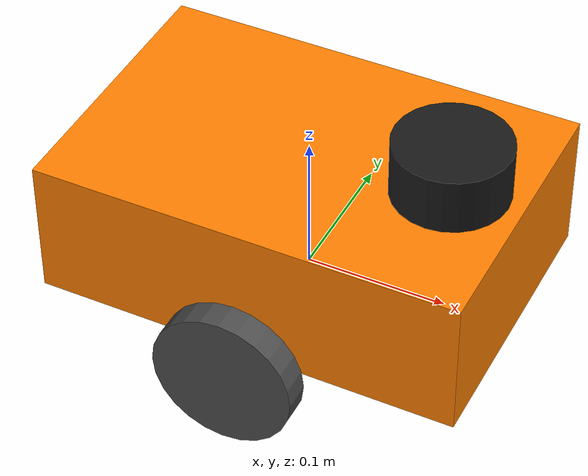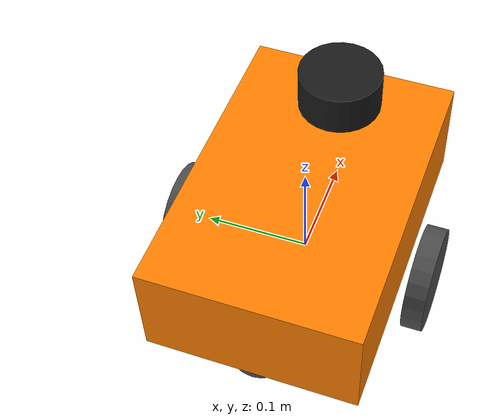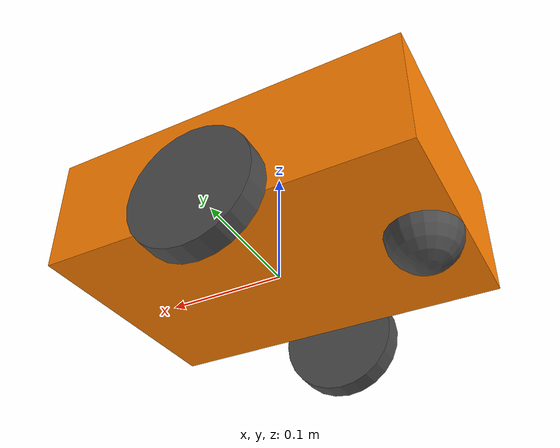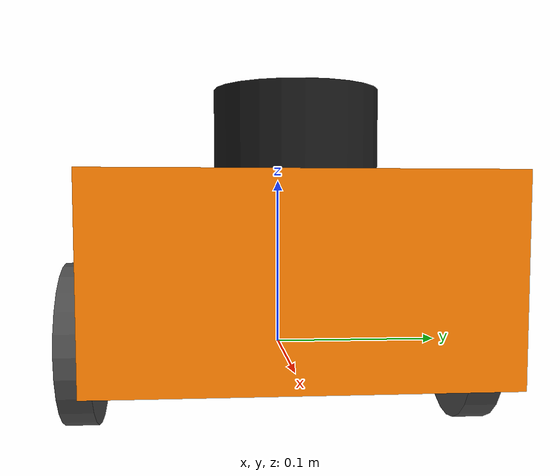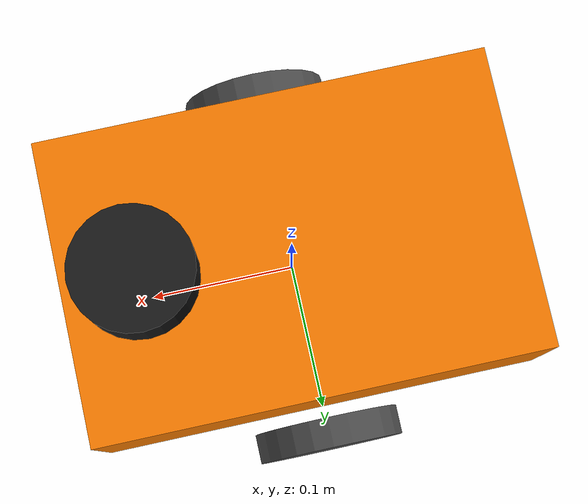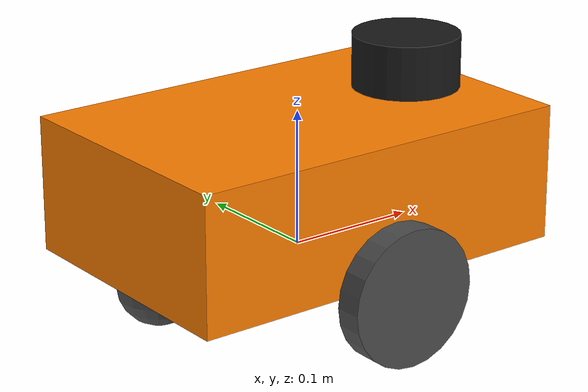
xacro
<?xml version="1.0"?>
<robot xmlns:xacro="http://www.ros.org/wiki/xacro" name="bot">

  <!-- ===== 매크로: 박스/실린더 inertial ===== -->
  <xacro:macro name="box_inertial" params="m x y z">
    <inertial>
      <mass value="${m}"/>
      <inertia
        ixx="${m*(y*y+z*z)/12}" iyy="${m*(x*x+z*z)/12}" izz="${m*(x*x+y*y)/12}"
        ixy="0" ixz="0" iyz="0"/>
    </inertial>
  </xacro:macro>

  <xacro:macro name="cyl_inertial" params="m r h">
    <inertial>
      <mass value="${m}"/>
      <inertia
        ixx="${m*(3*r*r+h*h)/12}" iyy="${m*(3*r*r+h*h)/12}" izz="${m*r*r/2}"
        ixy="0" ixz="0" iyz="0"/>
    </inertial>
  </xacro:macro>

  <!-- ===== 본체 ===== -->
  <link name="base_footprint"/>

  <link name="base_link">
    <visual>
      <geometry><box size="0.3 0.2 0.1"/></geometry>
      <material name="orange"><color rgba="1 0.5 0 1"/></material>
    </visual>
    <collision>
      <geometry><box size="0.3 0.2 0.1"/></geometry>
    </collision>
    <xacro:box_inertial m="2" x="0.3" y="0.2" z="0.1"/>
  </link>

  <joint name="base_footprint_joint" type="fixed">
    <parent link="base_footprint"/>
    <child link="base_link"/>
    <origin xyz="0 0 0.05" rpy="0 0 0"/>
  </joint>

  <!-- ===== 라이다 ===== -->
  <link name="lidar_link">
    <visual>
      <geometry><cylinder radius="0.04" length="0.04"/></geometry>
      <material name="black"><color rgba="0.1 0.1 0.1 1"/></material>
    </visual>
    <collision>
      <geometry><cylinder radius="0.04" length="0.04"/></geometry>
    </collision>
    <xacro:cyl_inertial m="0.1" r="0.04" h="0.04"/>
  </link>

  <joint name="lidar_joint" type="fixed">
    <parent link="base_link"/>
    <child link="lidar_link"/>
    <origin xyz="0.1 0 0.07" rpy="0 0 0"/>
  </joint>

  <!-- ===== 바퀴 매크로 ===== -->
  <xacro:macro name="wheel" params="prefix y_offset">
    <link name="wheel_${prefix}">
      <visual>
        <geometry><cylinder radius="0.05" length="0.02"/></geometry>
        <material name="gray"><color rgba="0.3 0.3 0.3 1"/></material>
      </visual>
      <collision>
        <geometry><cylinder radius="0.05" length="0.02"/></geometry>
      </collision>
      <xacro:cyl_inertial m="0.2" r="0.05" h="0.02"/>
    </link>

    <joint name="wheel_${prefix}_joint" type="continuous">
      <parent link="base_link"/>
      <child link="wheel_${prefix}"/>
      <origin xyz="0 ${y_offset} -0.05" rpy="-1.5708 0 0"/>
      <axis xyz="0 0 1"/>
    </joint>
  </xacro:macro>

  <xacro:wheel prefix="left"  y_offset="0.12"/>
  <xacro:wheel prefix="right" y_offset="-0.12"/>

  <!-- ===== 캐스터 (앞/뒤 균형) ===== -->
  <link name="caster">
    <visual>
      <geometry><sphere radius="0.03"/></geometry>
      <material name="gray"/>
    </visual>
    <collision>
      <geometry><sphere radius="0.03"/></geometry>
    </collision>
    <inertial>
      <mass value="0.05"/>
      <inertia ixx="1e-5" iyy="1e-5" izz="1e-5" ixy="0" ixz="0" iyz="0"/>
    </inertial>
  </link>

  <joint name="caster_joint" type="fixed">
    <parent link="base_link"/>
    <child link="caster"/>
    <origin xyz="-0.12 0 -0.05" rpy="0 0 0"/>
  </joint>

  <gazebo reference="caster">
    <mu1>0.0</mu1>
    <mu2>0.0</mu2>
  </gazebo>

  <!-- ===== Gazebo 라이다 센서 ===== -->
  <gazebo reference="lidar_link">
    <sensor name="lidar" type="gpu_lidar">
      <pose>0 0 0 0 0 0</pose>
      <topic>scan</topic>
      <update_rate>10</update_rate>
      <gz_frame_id>lidar_link</gz_frame_id>
      <ray>
        <scan>
          <horizontal>
            <samples>360</samples>
            <resolution>1</resolution>
            <min_angle>-3.14159</min_angle>
            <max_angle>3.14159</max_angle>
          </horizontal>
          <vertical>
            <samples>1</samples>
            <min_angle>0</min_angle>
            <max_angle>0</max_angle>
          </vertical>
        </scan>
        <range>
          <min>0.12</min>
          <max>10.0</max>
          <resolution>0.01</resolution>
        </range>
      </ray>
      <always_on>1</always_on>
      <visualize>true</visualize>
    </sensor>
  </gazebo>

  <!-- ===== Gazebo 차동구동 플러그인 ===== -->
  <gazebo>
    <plugin filename="gz-sim-diff-drive-system"
            name="gz::sim::systems::DiffDrive">
      <left_joint>wheel_left_joint</left_joint>
      <right_joint>wheel_right_joint</right_joint>
      <wheel_separation>0.24</wheel_separation>
      <wheel_radius>0.05</wheel_radius>
      <topic>cmd_vel</topic>
      <odom_topic>odom</odom_topic>
      <tf_topic>tf</tf_topic>
      <frame_id>odom</frame_id>
      <child_frame_id>base_footprint</child_frame_id>
      <odom_publish_frequency>30</odom_publish_frequency>
    </plugin>
  </gazebo>

  <!-- ===== Gazebo 조인트 상태 발행 ===== -->
  <gazebo>
    <plugin filename="gz-sim-joint-state-publisher-system"
            name="gz::sim::systems::JointStatePublisher">
      <topic>joint_states</topic>
    </plugin>
  </gazebo>

</robot>
